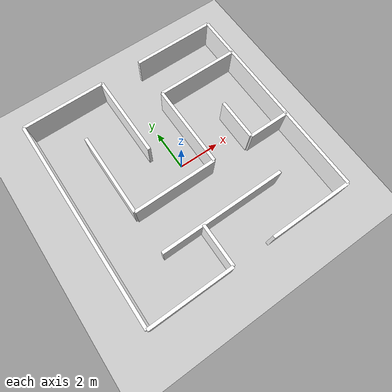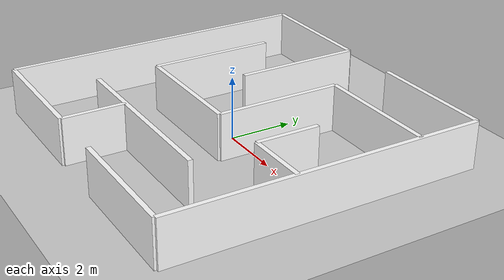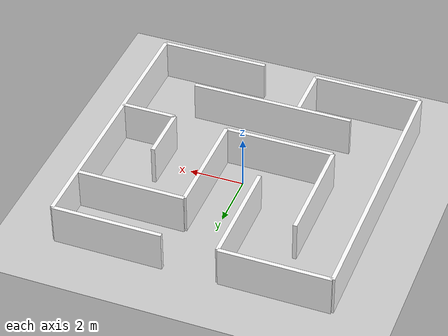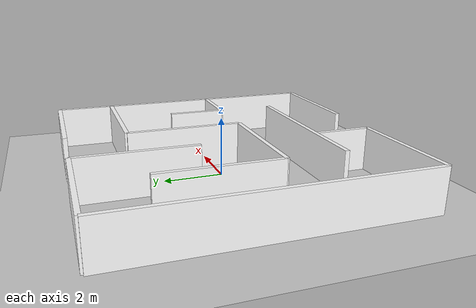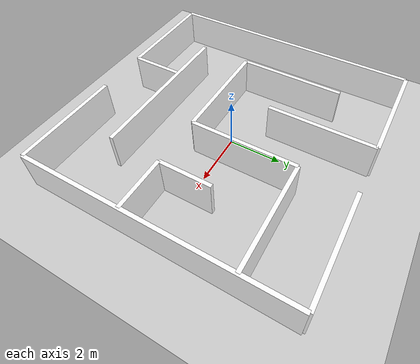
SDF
<sdf version="1.8">
 <world name="maze_world">
  <physics name="default_physics" type="ode">
   <max_step_size>0.001</max_step_size>
   <real_time_factor>3.0</real_time_factor>
   <real_time_update_rate>3000</real_time_update_rate>
  </physics>
  <plugin filename="gz-sim-physics-system" name="gz::sim::systems::Physics"/>
  <plugin filename="gz-sim-user-commands-system" name="gz::sim::systems::UserCommands"/>
  <plugin filename="gz-sim-scene-broadcaster-system" name="gz::sim::systems::SceneBroadcaster"/>
  <ambient>0.9 0.9 0.9 1</ambient>
  <background>0.4 0.6 0.9 1</background>
  <light name="sun" type="directional">
   <cast_shadows>false</cast_shadows>
   <pose>0 0 20 0 0 0</pose>
   <diffuse>1.0 1.0 1.0 1</diffuse>
   <specular>0.5 0.5 0.5 1</specular>
   <direction>0 0 -1</direction>
  </light>
  <model name="ground_plane">
   <static>true</static>
   <link name="link">
    <collision name="collision">
     <geometry><plane><normal>0 0 1</normal><size>30 30</size></plane></geometry>
    </collision>
    <visual name="visual">
     <geometry><plane><normal>0 0 1</normal><size>30 30</size></plane></geometry>
     <material><ambient>0.8 0.8 0.8 1</ambient></material>
    </visual>
   </link>
  </model>
  <model name="wall_outer_left">
   <static>true</static>
   <pose>-5 0 0.75 0 0 0</pose>
   <link name="link">
    <collision name="c"><geometry><box><size>0.15 10 1.5</size></box></geometry></collision>
    <visual name="v">
     <geometry><box><size>0.15 10 1.5</size></box></geometry>
     <material>
      <ambient>1 1 1 1</ambient>
      <diffuse>1 1 1 1</diffuse>
      <pbr><metal><albedo_map>textures/wall.jpeg</albedo_map></metal></pbr>
     </material>
    </visual>
   </link>
  </model>
  <model name="wall_outer_right">
   <static>true</static>
   <pose>5 0 0.75 0 0 0</pose>
   <link name="link">
    <collision name="c"><geometry><box><size>0.15 10 1.5</size></box></geometry></collision>
    <visual name="v">
     <geometry><box><size>0.15 10 1.5</size></box></geometry>
     <material>
      <ambient>1 1 1 1</ambient>
      <diffuse>1 1 1 1</diffuse>
      <pbr><metal><albedo_map>textures/wall.jpeg</albedo_map></metal></pbr>
     </material>
    </visual>
   </link>
  </model>
  <model name="wall_top_left">
   <static>true</static>
   <pose>-3 5 0.75 0 0 0</pose>
   <link name="link">
    <collision name="c"><geometry><box><size>4 0.15 1.5</size></box></geometry></collision>
    <visual name="v">
     <geometry><box><size>4 0.15 1.5</size></box></geometry>
     <material>
      <ambient>1 1 1 1</ambient>
      <diffuse>1 1 1 1</diffuse>
      <pbr><metal><albedo_map>textures/wall.jpeg</albedo_map></metal></pbr>
     </material>
    </visual>
   </link>
  </model>
  <model name="wall_top_right">
   <static>true</static>
   <pose>3 5 0.75 0 0 0</pose>
   <link name="link">
    <collision name="c"><geometry><box><size>4 0.15 1.5</size></box></geometry></collision>
    <visual name="v">
     <geometry><box><size>4 0.15 1.5</size></box></geometry>
     <material>
      <ambient>1 1 1 1</ambient>
      <diffuse>1 1 1 1</diffuse>
      <pbr><metal><albedo_map>textures/wall.jpeg</albedo_map></metal></pbr>
     </material>
    </visual>
   </link>
  </model>
  <model name="wall_bot_left">
   <static>true</static>
   <pose>-3 -5 0.75 0 0 0</pose>
   <link name="link">
    <collision name="c"><geometry><box><size>4 0.15 1.5</size></box></geometry></collision>
    <visual name="v">
     <geometry><box><size>4 0.15 1.5</size></box></geometry>
     <material>
      <ambient>1 1 1 1</ambient>
      <diffuse>1 1 1 1</diffuse>
      <pbr><metal><albedo_map>textures/wall.jpeg</albedo_map></metal></pbr>
     </material>
    </visual>
   </link>
  </model>
  <model name="wall_bot_right">
   <static>true</static>
   <pose>3 -5 0.75 0 0 0</pose>
   <link name="link">
    <collision name="c"><geometry><box><size>4 0.15 1.5</size></box></geometry></collision>
    <visual name="v">
     <geometry><box><size>4 0.15 1.5</size></box></geometry>
     <material>
      <ambient>1 1 1 1</ambient>
      <diffuse>1 1 1 1</diffuse>
      <pbr><metal><albedo_map>textures/wall.jpeg</albedo_map></metal></pbr>
     </material>
    </visual>
   </link>
  </model>
  <model name="wall_h_y3">
   <static>true</static>
   <pose>3 3 0.75 0 0 0</pose>
   <link name="link">
    <collision name="c"><geometry><box><size>4 0.15 1.5</size></box></geometry></collision>
    <visual name="v">
     <geometry><box><size>4 0.15 1.5</size></box></geometry>
     <material>
      <ambient>1 1 1 1</ambient>
      <diffuse>1 1 1 1</diffuse>
      <pbr><metal><albedo_map>textures/wall.jpeg</albedo_map></metal></pbr>
     </material>
    </visual>
   </link>
  </model>
  <model name="wall_h_y-1_left">
   <static>true</static>
   <pose>-1 -1 0.75 0 0 0</pose>
   <link name="link">
    <collision name="c"><geometry><box><size>4 0.15 1.5</size></box></geometry></collision>
    <visual name="v">
     <geometry><box><size>4 0.15 1.5</size></box></geometry>
     <material>
      <ambient>1 1 1 1</ambient>
      <diffuse>1 1 1 1</diffuse>
      <pbr><metal><albedo_map>textures/wall.jpeg</albedo_map></metal></pbr>
     </material>
    </visual>
   </link>
  </model>
  <model name="wall_h_y-1_right">
   <static>true</static>
   <pose>4 -1 0.75 0 0 0</pose>
   <link name="link">
    <collision name="c"><geometry><box><size>2 0.15 1.5</size></box></geometry></collision>
    <visual name="v">
     <geometry><box><size>2 0.15 1.5</size></box></geometry>
     <material>
      <ambient>1 1 1 1</ambient>
      <diffuse>1 1 1 1</diffuse>
      <pbr><metal><albedo_map>textures/wall.jpeg</albedo_map></metal></pbr>
     </material>
    </visual>
   </link>
  </model>
  <model name="wall_h_y-3">
   <static>true</static>
   <pose>0 -3 0.75 0 0 0</pose>
   <link name="link">
    <collision name="c"><geometry><box><size>6 0.15 1.5</size></box></geometry></collision>
    <visual name="v">
     <geometry><box><size>6 0.15 1.5</size></box></geometry>
     <material>
      <ambient>1 1 1 1</ambient>
      <diffuse>1 1 1 1</diffuse>
      <pbr><metal><albedo_map>textures/wall.jpeg</albedo_map></metal></pbr>
     </material>
    </visual>
   </link>
  </model>
  <model name="wall_v_x-3">
   <static>true</static>
   <pose>-3 1 0.75 0 0 0</pose>
   <link name="link">
    <collision name="c"><geometry><box><size>0.15 4 1.5</size></box></geometry></collision>
    <visual name="v">
     <geometry><box><size>0.15 4 1.5</size></box></geometry>
     <material>
      <ambient>1 1 1 1</ambient>
      <diffuse>1 1 1 1</diffuse>
      <pbr><metal><albedo_map>textures/wall.jpeg</albedo_map></metal></pbr>
     </material>
    </visual>
   </link>
  </model>
  <model name="wall_v_x-1_top">
   <static>true</static>
   <pose>-1 3 0.75 0 0 0</pose>
   <link name="link">
    <collision name="c"><geometry><box><size>0.15 4 1.5</size></box></geometry></collision>
    <visual name="v">
     <geometry><box><size>0.15 4 1.5</size></box></geometry>
     <material>
      <ambient>1 1 1 1</ambient>
      <diffuse>1 1 1 1</diffuse>
      <pbr><metal><albedo_map>textures/wall.jpeg</albedo_map></metal></pbr>
     </material>
    </visual>
   </link>
  </model>
  <model name="wall_v_x-1_bot">
   <static>true</static>
   <pose>-1 -4 0.75 0 0 0</pose>
   <link name="link">
    <collision name="c"><geometry><box><size>0.15 2 1.5</size></box></geometry></collision>
    <visual name="v">
     <geometry><box><size>0.15 2 1.5</size></box></geometry>
     <material>
      <ambient>1 1 1 1</ambient>
      <diffuse>1 1 1 1</diffuse>
      <pbr><metal><albedo_map>textures/wall.jpeg</albedo_map></metal></pbr>
     </material>
    </visual>
   </link>
  </model>
  <model name="wall_v_x1">
   <static>true</static>
   <pose>1 1 0.75 0 0 0</pose>
   <link name="link">
    <collision name="c"><geometry><box><size>0.15 4 1.5</size></box></geometry></collision>
    <visual name="v">
     <geometry><box><size>0.15 4 1.5</size></box></geometry>
     <material>
      <ambient>1 1 1 1</ambient>
      <diffuse>1 1 1 1</diffuse>
      <pbr><metal><albedo_map>textures/wall.jpeg</albedo_map></metal></pbr>
     </material>
    </visual>
   </link>
  </model>
  <model name="wall_v_x3">
   <static>true</static>
   <pose>3 0 0.75 0 0 0</pose>
   <link name="link">
    <collision name="c"><geometry><box><size>0.15 2 1.5</size></box></geometry></collision>
    <visual name="v">
     <geometry><box><size>0.15 2 1.5</size></box></geometry>
     <material>
      <ambient>1 1 1 1</ambient>
      <diffuse>1 1 1 1</diffuse>
      <pbr><metal><albedo_map>textures/wall.jpeg</albedo_map></metal></pbr>
     </material>
    </visual>
   </link>
  </model>
 </world>
</sdf>
